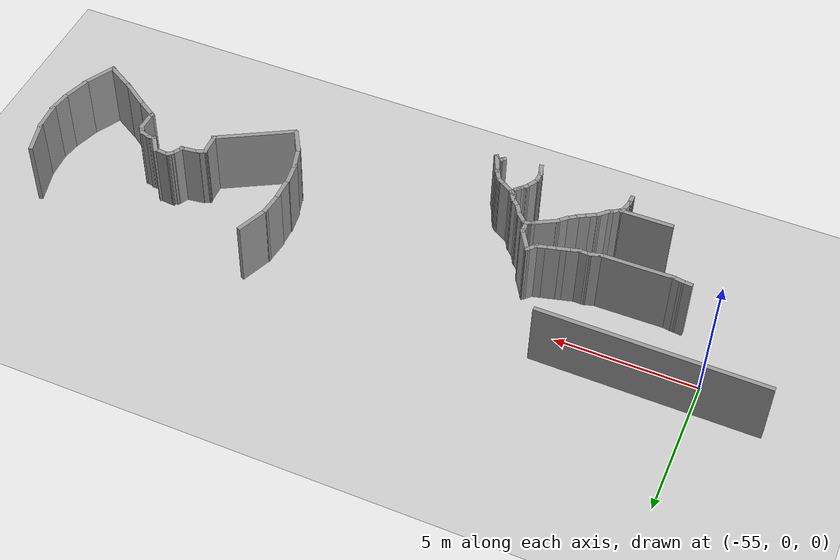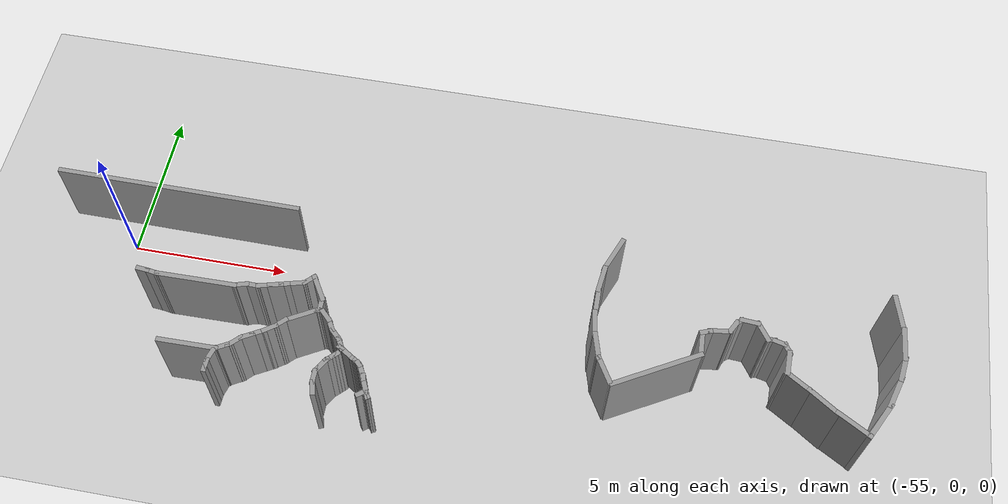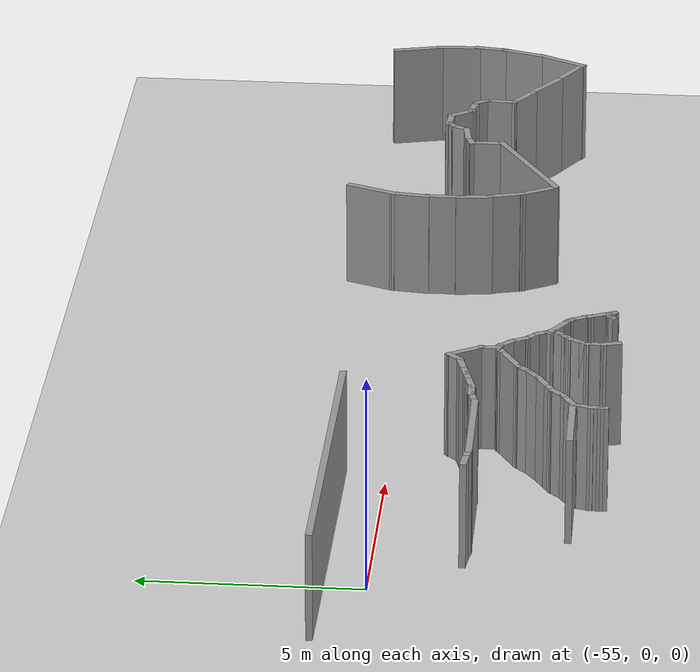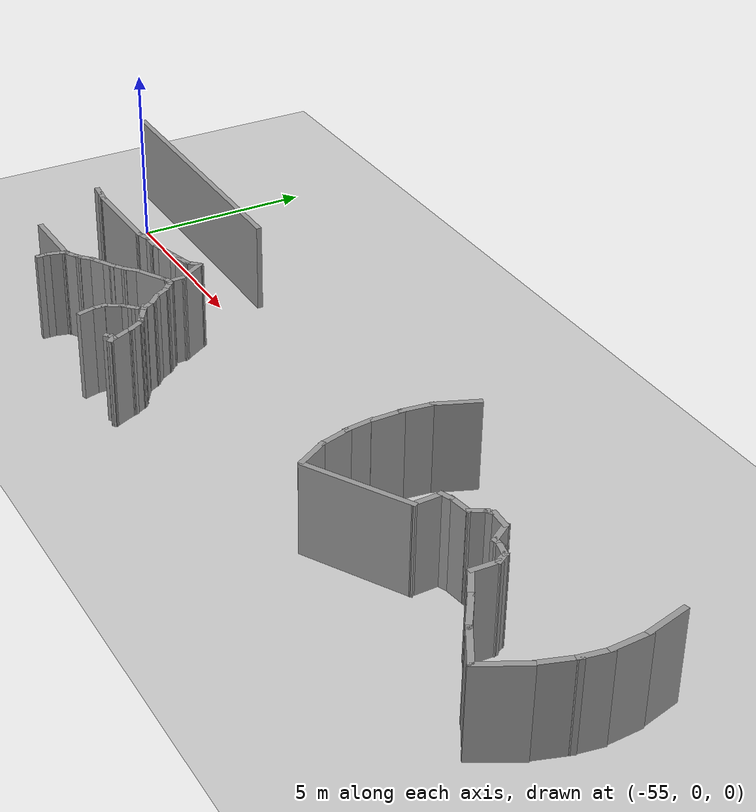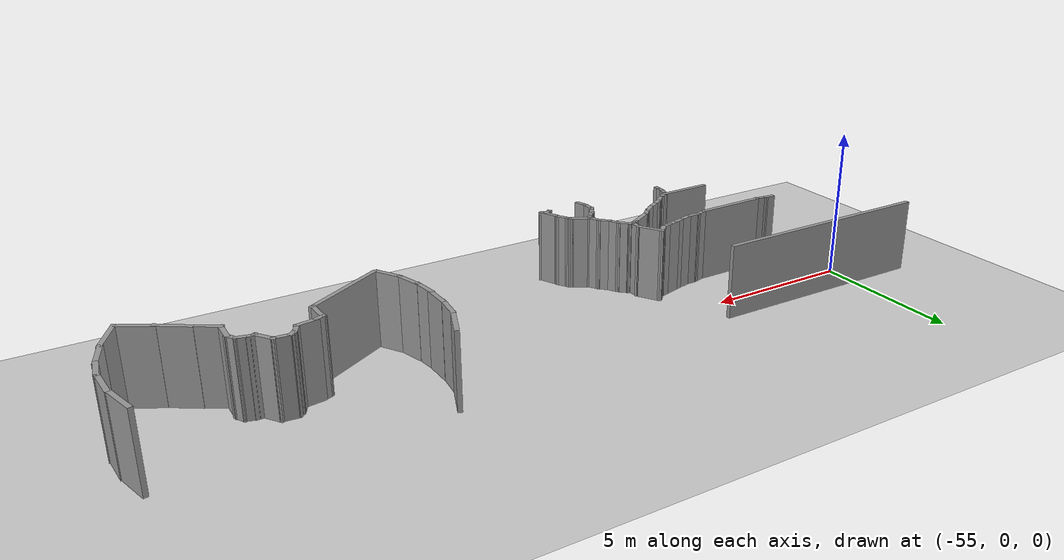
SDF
<sdf version="1.6">
 <world name="default">
  <model name="ground_plane">
   <static>1</static>
   <link name="link">
    <collision name="collision">
     <geometry><plane><normal>0 0 1</normal><size>100 100</size></plane></geometry>
     <surface><friction><ode><mu>100</mu><mu2>50</mu2></ode></friction></surface>
    </collision>
    <visual name="visual">
     <cast_shadows>0</cast_shadows>
     <geometry><plane><normal>0 0 1</normal><size>100 100</size></plane></geometry>
     <material>
      <script><uri>file://media/materials/scripts/gazebo.material</uri><name>Gazebo/Grey</name></script>
     </material>
    </visual>
   </link>
  </model>
  <model name="scene">
   <pose>1.8013 -1.70593 0 0 -0 0</pose>
   <link name="Wall_1114">
    <collision name="Wall_1114_Collision">
     <geometry><box><size>1 0.15 2.5</size></box></geometry>
     <pose>0 0 1.25 0 -0 0</pose>
    </collision>
    <visual name="Wall_1114_Visual">
     <pose>0 0 1.25 0 -0 0</pose>
     <geometry><box><size>1 0.15 2.5</size></box></geometry>
     <material>
      <script><uri>file://media/materials/scripts/gazebo.material</uri><name>Gazebo/Grey</name></script>
      <ambient>1 1 1 1</ambient>
     </material>
    </visual>
    <pose>-41.1953 -1.04522 0 0 -0 2.0944</pose>
   </link>
   <link name="Wall_1115">
    <collision name="Wall_1115_Collision">
     <geometry><box><size>0.925332 0.15 2.5</size></box></geometry>
     <pose>0 0 1.25 0 -0 0</pose>
    </collision>
    <visual name="Wall_1115_Visual">
     <pose>0 0 1.25 0 -0 0</pose>
     <geometry><box><size>0.925332 0.15 2.5</size></box></geometry>
     <material>
      <script><uri>file://media/materials/scripts/gazebo.material</uri><name>Gazebo/Grey</name></script>
      <ambient>1 1 1 1</ambient>
     </material>
    </visual>
    <pose>-41.5106 -0.30337 0 0 -0 1.83915</pose>
   </link>
   <link name="Wall_1116">
    <collision name="Wall_1116_Collision">
     <geometry><box><size>0.873597 0.15 2.5</size></box></geometry>
     <pose>0 0 1.25 0 -0 0</pose>
    </collision>
    <visual name="Wall_1116_Visual">
     <pose>0 0 1.25 0 -0 0</pose>
     <geometry><box><size>0.873597 0.15 2.5</size></box></geometry>
     <material>
      <script><uri>file://media/materials/scripts/gazebo.material</uri><name>Gazebo/Grey</name></script>
      <ambient>1 1 1 1</ambient>
     </material>
    </visual>
    <pose>-41.6722 0.429528 0 0 -0 1.69286</pose>
   </link>
   <link name="Wall_1117">
    <collision name="Wall_1117_Collision">
     <geometry><box><size>0.912636 0.15 2.5</size></box></geometry>
     <pose>0 0 1.25 0 -0 0</pose>
    </collision>
    <visual name="Wall_1117_Visual">
     <pose>0 0 1.25 0 -0 0</pose>
     <geometry><box><size>0.912636 0.15 2.5</size></box></geometry>
     <material>
      <script><uri>file://media/materials/scripts/gazebo.material</uri><name>Gazebo/Grey</name></script>
      <ambient>1 1 1 1</ambient>
     </material>
    </visual>
    <pose>-41.7015 1.16995 0 0 -0 1.5708</pose>
   </link>
   <link name="Wall_1118">
    <collision name="Wall_1118_Collision">
     <geometry><box><size>0.946332 0.15 2.5</size></box></geometry>
     <pose>0 0 1.25 0 -0 0</pose>
    </collision>
    <visual name="Wall_1118_Visual">
     <pose>0 0 1.25 0 -0 0</pose>
     <geometry><box><size>0.946332 0.15 2.5</size></box></geometry>
     <material>
      <script><uri>file://media/materials/scripts/gazebo.material</uri><name>Gazebo/Grey</name></script>
      <ambient>1 1 1 1</ambient>
     </material>
    </visual>
    <pose>-41.6663 1.9463 0 0 -0 1.44517</pose>
   </link>
   <link name="Wall_1119">
    <collision name="Wall_1119_Collision">
     <geometry><box><size>1.2565 0.15 2.5</size></box></geometry>
     <pose>0 0 1.25 0 -0 0</pose>
    </collision>
    <visual name="Wall_1119_Visual">
     <pose>0 0 1.25 0 -0 0</pose>
     <geometry><box><size>1.2565 0.15 2.5</size></box></geometry>
     <material>
      <script><uri>file://media/materials/scripts/gazebo.material</uri><name>Gazebo/Grey</name></script>
      <ambient>1 1 1 1</ambient>
     </material>
    </visual>
    <pose>-41.4111 2.86973 0 0 -0 1.19051</pose>
   </link>
   <link name="Wall_1131">
    <collision name="Wall_1131_Collision">
     <geometry><box><size>1.23853 0.15 2.5</size></box></geometry>
     <pose>0 0 1.25 0 -0 0</pose>
    </collision>
    <visual name="Wall_1131_Visual">
     <pose>0 0 1.25 0 -0 0</pose>
     <geometry><box><size>1.23853 0.15 2.5</size></box></geometry>
     <material>
      <script><uri>file://media/materials/scripts/gazebo.material</uri><name>Gazebo/Grey</name></script>
      <ambient>1 1 1 1</ambient>
     </material>
    </visual>
    <pose>-32.8003 2.40804 0 0 0 -1.32553</pose>
   </link>
   <link name="Wall_1132">
    <collision name="Wall_1132_Collision">
     <geometry><box><size>1.10533 0.15 2.5</size></box></geometry>
     <pose>0 0 1.25 0 -0 0</pose>
    </collision>
    <visual name="Wall_1132_Visual">
     <pose>0 0 1.25 0 -0 0</pose>
     <geometry><box><size>1.10533 0.15 2.5</size></box></geometry>
     <material>
      <script><uri>file://media/materials/scripts/gazebo.material</uri><name>Gazebo/Grey</name></script>
      <ambient>1 1 1 1</ambient>
     </material>
    </visual>
    <pose>-32.6309 1.40333 0 0 0 -1.52357</pose>
   </link>
   <link name="Wall_1133">
    <collision name="Wall_1133_Collision">
     <geometry><box><size>0.849738 0.15 2.5</size></box></geometry>
     <pose>0 0 1.25 0 -0 0</pose>
    </collision>
    <visual name="Wall_1133_Visual">
     <pose>0 0 1.25 0 -0 0</pose>
     <geometry><box><size>0.849738 0.15 2.5</size></box></geometry>
     <material>
      <script><uri>file://media/materials/scripts/gazebo.material</uri><name>Gazebo/Grey</name></script>
      <ambient>1 1 1 1</ambient>
     </material>
    </visual>
    <pose>-32.6514 0.581529 0 0 0 -1.73651</pose>
   </link>
   <link name="Wall_1134">
    <collision name="Wall_1134_Collision">
     <geometry><box><size>1.11889 0.15 2.5</size></box></geometry>
     <pose>0 0 1.25 0 -0 0</pose>
    </collision>
    <visual name="Wall_1134_Visual">
     <pose>0 0 1.25 0 -0 0</pose>
     <geometry><box><size>1.11889 0.15 2.5</size></box></geometry>
     <material>
      <script><uri>file://media/materials/scripts/gazebo.material</uri><name>Gazebo/Grey</name></script>
      <ambient>1 1 1 1</ambient>
     </material>
    </visual>
    <pose>-32.8431 -0.195251 0 0 0 -1.88271</pose>
   </link>
   <link name="Wall_1135">
    <collision name="Wall_1135_Collision">
     <geometry><box><size>1.34589 0.15 2.5</size></box></geometry>
     <pose>0 0 1.25 0 -0 0</pose>
    </collision>
    <visual name="Wall_1135_Visual">
     <pose>0 0 1.25 0 -0 0</pose>
     <geometry><box><size>1.34589 0.15 2.5</size></box></geometry>
     <material>
      <script><uri>file://media/materials/scripts/gazebo.material</uri><name>Gazebo/Grey</name></script>
      <ambient>1 1 1 1</ambient>
     </material>
    </visual>
    <pose>-33.2556 -1.18545 0 0 0 -2.05528</pose>
   </link>
   <link name="Wall_1136">
    <collision name="Wall_1136_Collision">
     <geometry><box><size>1.22147 0.15 2.5</size></box></geometry>
     <pose>0 0 1.25 0 -0 0</pose>
    </collision>
    <visual name="Wall_1136_Visual">
     <pose>0 0 1.25 0 -0 0</pose>
     <geometry><box><size>1.22147 0.15 2.5</size></box></geometry>
     <material>
      <script><uri>file://media/materials/scripts/gazebo.material</uri><name>Gazebo/Grey</name></script>
      <ambient>1 1 1 1</ambient>
     </material>
    </visual>
    <pose>-33.9961 -1.42875 0 0 -0 2.6109</pose>
   </link>
   <link name="Wall_1137">
    <collision name="Wall_1137_Collision">
     <geometry><box><size>1.17135 0.15 2.5</size></box></geometry>
     <pose>0 0 1.25 0 -0 0</pose>
    </collision>
    <visual name="Wall_1137_Visual">
     <pose>0 0 1.25 0 -0 0</pose>
     <geometry><box><size>1.17135 0.15 2.5</size></box></geometry>
     <material>
      <script><uri>file://media/materials/scripts/gazebo.material</uri><name>Gazebo/Grey</name></script>
      <ambient>1 1 1 1</ambient>
     </material>
    </visual>
    <pose>-34.8767 -0.879623 0 0 -0 2.53133</pose>
   </link>
   <link name="Wall_1138">
    <collision name="Wall_1138_Collision">
     <geometry><box><size>0.934721 0.15 2.5</size></box></geometry>
     <pose>0 0 1.25 0 -0 0</pose>
    </collision>
    <visual name="Wall_1138_Visual">
     <pose>0 0 1.25 0 -0 0</pose>
     <geometry><box><size>0.934721 0.15 2.5</size></box></geometry>
     <material>
      <script><uri>file://media/materials/scripts/gazebo.material</uri><name>Gazebo/Grey</name></script>
      <ambient>1 1 1 1</ambient>
     </material>
    </visual>
    <pose>-35.6398 -0.374549 0 0 -0 2.56952</pose>
   </link>
   <link name="Wall_1139">
    <collision name="Wall_1139_Collision">
     <geometry><box><size>0.817523 0.15 2.5</size></box></geometry>
     <pose>0 0 1.25 0 -0 0</pose>
    </collision>
    <visual name="Wall_1139_Visual">
     <pose>0 0 1.25 0 -0 0</pose>
     <geometry><box><size>0.817523 0.15 2.5</size></box></geometry>
     <material>
      <script><uri>file://media/materials/scripts/gazebo.material</uri><name>Gazebo/Grey</name></script>
      <ambient>1 1 1 1</ambient>
     </material>
    </visual>
    <pose>-35.9431 0.171418 0 0 -0 1.53529</pose>
   </link>
   <link name="Wall_1140">
    <collision name="Wall_1140_Collision">
     <geometry><box><size>0.440183 0.15 2.5</size></box></geometry>
     <pose>0 0 1.25 0 -0 0</pose>
    </collision>
    <visual name="Wall_1140_Visual">
     <pose>0 0 1.25 0 -0 0</pose>
     <geometry><box><size>0.440183 0.15 2.5</size></box></geometry>
     <material>
      <script><uri>file://media/materials/scripts/gazebo.material</uri><name>Gazebo/Grey</name></script>
      <ambient>1 1 1 1</ambient>
     </material>
    </visual>
    <pose>-36.0039 0.615887 0 0 -0 2.09509</pose>
   </link>
   <link name="Wall_1141">
    <collision name="Wall_1141_Collision">
     <geometry><box><size>0.451446 0.15 2.5</size></box></geometry>
     <pose>0 0 1.25 0 -0 0</pose>
    </collision>
    <visual name="Wall_1141_Visual">
     <pose>0 0 1.25 0 -0 0</pose>
     <geometry><box><size>0.451446 0.15 2.5</size></box></geometry>
     <material>
      <script><uri>file://media/materials/scripts/gazebo.material</uri><name>Gazebo/Grey</name></script>
      <ambient>1 1 1 1</ambient>
     </material>
    </visual>
    <pose>-36.2376 0.777242 0 0 -0 2.90211</pose>
   </link>
   <link name="Wall_1142">
    <collision name="Wall_1142_Collision">
     <geometry><box><size>0.346667 0.15 2.5</size></box></geometry>
     <pose>0 0 1.25 0 -0 0</pose>
    </collision>
    <visual name="Wall_1142_Visual">
     <pose>0 0 1.25 0 -0 0</pose>
     <geometry><box><size>0.346667 0.15 2.5</size></box></geometry>
     <material>
      <script><uri>file://media/materials/scripts/gazebo.material</uri><name>Gazebo/Grey</name></script>
      <ambient>1 1 1 1</ambient>
     </material>
    </visual>
    <pose>-36.4824 0.825047 0 0 0 -3.11483</pose>
   </link>
   <link name="Wall_1143">
    <collision name="Wall_1143_Collision">
     <geometry><box><size>0.742494 0.15 2.5</size></box></geometry>
     <pose>0 0 1.25 0 -0 0</pose>
    </collision>
    <visual name="Wall_1143_Visual">
     <pose>0 0 1.25 0 -0 0</pose>
     <geometry><box><size>0.742494 0.15 2.5</size></box></geometry>
     <material>
      <script><uri>file://media/materials/scripts/gazebo.material</uri><name>Gazebo/Grey</name></script>
      <ambient>1 1 1 1</ambient>
     </material>
    </visual>
    <pose>-36.745 1.0542 0 0 -0 2.15893</pose>
   </link>
   <link name="Wall_1144">
    <collision name="Wall_1144_Collision">
     <geometry><box><size>0.628094 0.15 2.5</size></box></geometry>
     <pose>0 0 1.25 0 -0 0</pose>
    </collision>
    <visual name="Wall_1144_Visual">
     <pose>0 0 1.25 0 -0 0</pose>
     <geometry><box><size>0.628094 0.15 2.5</size></box></geometry>
     <material>
      <script><uri>file://media/materials/scripts/gazebo.material</uri><name>Gazebo/Grey</name></script>
      <ambient>1 1 1 1</ambient>
     </material>
    </visual>
    <pose>-37.1478 1.30379 0 0 -0 3.06706</pose>
   </link>
   <link name="Wall_1145">
    <collision name="Wall_1145_Collision">
     <geometry><box><size>0.298613 0.15 2.5</size></box></geometry>
     <pose>0 0 1.25 0 -0 0</pose>
    </collision>
    <visual name="Wall_1145_Visual">
     <pose>0 0 1.25 0 -0 0</pose>
     <geometry><box><size>0.298613 0.15 2.5</size></box></geometry>
     <material>
      <script><uri>file://media/materials/scripts/gazebo.material</uri><name>Gazebo/Grey</name></script>
      <ambient>1 1 1 1</ambient>
     </material>
    </visual>
    <pose>-37.4451 1.26161 0 0 0 -2.4861</pose>
   </link>
   <link name="Wall_1146">
    <collision name="Wall_1146_Collision">
     <geometry><box><size>0.52625 0.15 2.5</size></box></geometry>
     <pose>0 0 1.25 0 -0 0</pose>
    </collision>
    <visual name="Wall_1146_Visual">
     <pose>0 0 1.25 0 -0 0</pose>
     <geometry><box><size>0.52625 0.15 2.5</size></box></geometry>
     <material>
      <script><uri>file://media/materials/scripts/gazebo.material</uri><name>Gazebo/Grey</name></script>
      <ambient>1 1 1 1</ambient>
     </material>
    </visual>
    <pose>-37.6096 1.05164 0 0 0 -2.07534</pose>
   </link>
   <link name="Wall_1148">
    <collision name="Wall_1148_Collision">
     <geometry><box><size>0.734238 0.15 2.5</size></box></geometry>
     <pose>0 0 1.25 0 -0 0</pose>
    </collision>
    <visual name="Wall_1148_Visual">
     <pose>0 0 1.25 0 -0 0</pose>
     <geometry><box><size>0.734238 0.15 2.5</size></box></geometry>
     <material>
      <script><uri>file://media/materials/scripts/gazebo.material</uri><name>Gazebo/Grey</name></script>
      <ambient>1 1 1 1</ambient>
     </material>
    </visual>
    <pose>-37.9899 0.832469 0 0 0 -3.00493</pose>
   </link>
   <link name="Wall_1149">
    <collision name="Wall_1149_Collision">
     <geometry><box><size>0.402022 0.15 2.5</size></box></geometry>
     <pose>0 0 1.25 0 -0 0</pose>
    </collision>
    <visual name="Wall_1149_Visual">
     <pose>0 0 1.25 0 -0 0</pose>
     <geometry><box><size>0.402022 0.15 2.5</size></box></geometry>
     <material>
      <script><uri>file://media/materials/scripts/gazebo.material</uri><name>Gazebo/Grey</name></script>
      <ambient>1 1 1 1</ambient>
     </material>
    </visual>
    <pose>-38.3974 0.734067 0 0 0 -2.78558</pose>
   </link>
   <link name="Wall_1150">
    <collision name="Wall_1150_Collision">
     <geometry><box><size>0.875498 0.15 2.5</size></box></geometry>
     <pose>0 0 1.25 0 -0 0</pose>
    </collision>
    <visual name="Wall_1150_Visual">
     <pose>0 0 1.25 0 -0 0</pose>
     <geometry><box><size>0.875498 0.15 2.5</size></box></geometry>
     <material>
      <script><uri>file://media/materials/scripts/gazebo.material</uri><name>Gazebo/Grey</name></script>
      <ambient>1 1 1 1</ambient>
     </material>
    </visual>
    <pose>-38.4909 0.327535 0 0 0 -1.5433</pose>
   </link>
   <link name="Wall_1151">
    <collision name="Wall_1151_Collision">
     <geometry><box><size>2.97955 0.15 2.5</size></box></geometry>
     <pose>0 0 1.25 0 -0 0</pose>
    </collision>
    <visual name="Wall_1151_Visual">
     <pose>0 0 1.25 0 -0 0</pose>
     <geometry><box><size>2.97955 0.15 2.5</size></box></geometry>
     <material>
      <script><uri>file://media/materials/scripts/gazebo.material</uri><name>Gazebo/Grey</name></script>
      <ambient>1 1 1 1</ambient>
     </material>
    </visual>
    <pose>-39.6938 -0.738408 0 0 0 -2.6213</pose>
   </link>
   <link name="Wall_229">
    <collision name="Wall_229_Collision">
     <geometry><box><size>0.5 0.15 2.5</size></box></geometry>
     <pose>0 0 1.25 0 -0 0</pose>
    </collision>
    <visual name="Wall_229_Visual">
     <pose>0 0 1.25 0 -0 0</pose>
     <geometry><box><size>0.5 0.15 2.5</size></box></geometry>
     <material>
      <script><uri>file://media/materials/scripts/gazebo.material</uri><name>Gazebo/Grey</name></script>
      <ambient>1 1 1 1</ambient>
     </material>
    </visual>
    <pose>-49.3862 -3.13393 0 0 -0 1.8326</pose>
   </link>
   <link name="Wall_235">
    <collision name="Wall_235_Collision">
     <geometry><box><size>0.5 0.15 2.5</size></box></geometry>
     <pose>0 0 1.25 0 -0 0</pose>
    </collision>
    <visual name="Wall_235_Visual">
     <pose>0 0 1.25 0 -0 0</pose>
     <geometry><box><size>0.5 0.15 2.5</size></box></geometry>
     <material>
      <script><uri>file://media/materials/scripts/gazebo.material</uri><name>Gazebo/Grey</name></script>
      <ambient>1 1 1 1</ambient>
     </material>
    </visual>
    <pose>-49.4315 -2.78989 0 0 -0 1.5708</pose>
   </link>
   <link name="Wall_236">
    <collision name="Wall_236_Collision">
     <geometry><box><size>0.25 0.15 2.5</size></box></geometry>
     <pose>0 0 1.25 0 -0 0</pose>
    </collision>
    <visual name="Wall_236_Visual">
     <pose>0 0 1.25 0 -0 0</pose>
     <geometry><box><size>0.25 0.15 2.5</size></box></geometry>
     <material>
      <script><uri>file://media/materials/scripts/gazebo.material</uri><name>Gazebo/Grey</name></script>
      <ambient>1 1 1 1</ambient>
     </material>
    </visual>
    <pose>-49.4065 -2.57159 0 0 -0 1.0472</pose>
   </link>
   <link name="Wall_237">
    <collision name="Wall_237_Collision">
     <geometry><box><size>0.5 0.15 2.5</size></box></geometry>
     <pose>0 0 1.25 0 -0 0</pose>
    </collision>
    <visual name="Wall_237_Visual">
     <pose>0 0 1.25 0 -0 0</pose>
     <geometry><box><size>0.5 0.15 2.5</size></box></geometry>
     <material>
      <script><uri>file://media/materials/scripts/gazebo.material</uri><name>Gazebo/Grey</name></script>
      <ambient>1 1 1 1</ambient>
     </material>
    </visual>
    <pose>-49.294 -2.37673 0 0 -0 1.0472</pose>
   </link>
   <link name="Wall_238">
    <collision name="Wall_238_Collision">
     <geometry><box><size>0.25 0.15 2.5</size></box></geometry>
     <pose>0 0 1.25 0 -0 0</pose>
    </collision>
    <visual name="Wall_238_Visual">
     <pose>0 0 1.25 0 -0 0</pose>
     <geometry><box><size>0.25 0.15 2.5</size></box></geometry>
     <material>
      <script><uri>file://media/materials/scripts/gazebo.material</uri><name>Gazebo/Grey</name></script>
      <ambient>1 1 1 1</ambient>
     </material>
    </visual>
    <pose>-49.1711 -2.18982 0 0 -0 0.785398</pose>
   </link>
   <link name="Wall_239">
    <collision name="Wall_239_Collision">
     <geometry><box><size>0.25 0.15 2.5</size></box></geometry>
     <pose>0 0 1.25 0 -0 0</pose>
    </collision>
    <visual name="Wall_239_Visual">
     <pose>0 0 1.25 0 -0 0</pose>
     <geometry><box><size>0.25 0.15 2.5</size></box></geometry>
     <material>
      <script><uri>file://media/materials/scripts/gazebo.material</uri><name>Gazebo/Grey</name></script>
      <ambient>1 1 1 1</ambient>
     </material>
    </visual>
    <pose>-49.1004 -2.11911 0 0 -0 0.785398</pose>
   </link>
   <link name="Wall_240">
    <collision name="Wall_240_Collision">
     <geometry><box><size>0.25 0.15 2.5</size></box></geometry>
     <pose>0 0 1.25 0 -0 0</pose>
    </collision>
    <visual name="Wall_240_Visual">
     <pose>0 0 1.25 0 -0 0</pose>
     <geometry><box><size>0.25 0.15 2.5</size></box></geometry>
     <material>
      <script><uri>file://media/materials/scripts/gazebo.material</uri><name>Gazebo/Grey</name></script>
      <ambient>1 1 1 1</ambient>
     </material>
    </visual>
    <pose>-49.0297 -2.0484 0 0 -0 0.785398</pose>
   </link>
   <link name="Wall_241">
    <collision name="Wall_241_Collision">
     <geometry><box><size>0.25 0.15 2.5</size></box></geometry>
     <pose>0 0 1.25 0 -0 0</pose>
    </collision>
    <visual name="Wall_241_Visual">
     <pose>0 0 1.25 0 -0 0</pose>
     <geometry><box><size>0.25 0.15 2.5</size></box></geometry>
     <material>
      <script><uri>file://media/materials/scripts/gazebo.material</uri><name>Gazebo/Grey</name></script>
      <ambient>1 1 1 1</ambient>
     </material>
    </visual>
    <pose>-48.959 -1.97769 0 0 -0 0.785398</pose>
   </link>
   <link name="Wall_342">
    <collision name="Wall_342_Collision">
     <geometry><box><size>0.270081 0.15 2.5</size></box></geometry>
     <pose>0 0 1.25 0 -0 0</pose>
    </collision>
    <visual name="Wall_342_Visual">
     <pose>0 0 1.25 0 -0 0</pose>
     <geometry><box><size>0.270081 0.15 2.5</size></box></geometry>
     <material>
      <script><uri>file://media/materials/scripts/gazebo.material</uri><name>Gazebo/Grey</name></script>
      <ambient>1 1 1 1</ambient>
     </material>
    </visual>
    <pose>-48.0037 -3.08713 0 0 -0 0.675676</pose>
   </link>
   <link name="Wall_343">
    <collision name="Wall_343_Collision">
     <geometry><box><size>0.251498 0.15 2.5</size></box></geometry>
     <pose>0 0 1.25 0 -0 0</pose>
    </collision>
    <visual name="Wall_343_Visual">
     <pose>0 0 1.25 0 -0 0</pose>
     <geometry><box><size>0.251498 0.15 2.5</size></box></geometry>
     <material>
      <script><uri>file://media/materials/scripts/gazebo.material</uri><name>Gazebo/Grey</name></script>
      <ambient>1 1 1 1</ambient>
     </material>
    </visual>
    <pose>-47.9069 -3.038 0 0 -0 0.172</pose>
   </link>
   <link name="Wall_344">
    <collision name="Wall_344_Collision">
     <geometry><box><size>0.289635 0.15 2.5</size></box></geometry>
     <pose>0 0 1.25 0 -0 0</pose>
    </collision>
    <visual name="Wall_344_Visual">
     <pose>0 0 1.25 0 -0 0</pose>
     <geometry><box><size>0.289635 0.15 2.5</size></box></geometry>
     <material>
      <script><uri>file://media/materials/scripts/gazebo.material</uri><name>Gazebo/Grey</name></script>
      <ambient>1 1 1 1</ambient>
     </material>
    </visual>
    <pose>-47.8128 -3.08639 0 0 0 -0.88821</pose>
   </link>
   <link name="Wall_367">
    <collision name="Wall_367_Collision">
     <geometry><box><size>0.740405 0.15 2.5</size></box></geometry>
     <pose>0 0 1.25 0 -0 0</pose>
    </collision>
    <visual name="Wall_367_Visual">
     <pose>0 0 1.25 0 -0 0</pose>
     <geometry><box><size>0.740405 0.15 2.5</size></box></geometry>
     <material>
      <script><uri>file://media/materials/scripts/gazebo.material</uri><name>Gazebo/Grey</name></script>
      <ambient>1 1 1 1</ambient>
     </material>
    </visual>
    <pose>-47.8887 -2.87368 0 0 -0 1.98887</pose>
   </link>
   <link name="Wall_370">
    <collision name="Wall_370_Collision">
     <geometry><box><size>0.50191 0.15 2.5</size></box></geometry>
     <pose>0 0 1.25 0 -0 0</pose>
    </collision>
    <visual name="Wall_370_Visual">
     <pose>0 0 1.25 0 -0 0</pose>
     <geometry><box><size>0.50191 0.15 2.5</size></box></geometry>
     <material>
      <script><uri>file://media/materials/scripts/gazebo.material</uri><name>Gazebo/Grey</name></script>
      <ambient>1 1 1 1</ambient>
     </material>
    </visual>
    <pose>-48.1244 -2.35324 0 0 -0 2.07485</pose>
   </link>
   <link name="Wall_371">
    <collision name="Wall_371_Collision">
     <geometry><box><size>0.25 0.15 2.5</size></box></geometry>
     <pose>0 0 1.25 0 -0 0</pose>
    </collision>
    <visual name="Wall_371_Visual">
     <pose>0 0 1.25 0 -0 0</pose>
     <geometry><box><size>0.25 0.15 2.5</size></box></geometry>
     <material>
      <script><uri>file://media/materials/scripts/gazebo.material</uri><name>Gazebo/Grey</name></script>
      <ambient>1 1 1 1</ambient>
     </material>
    </visual>
    <pose>-48.2447 -2.16381 0 0 -0 2.35619</pose>
   </link>
   <link name="Wall_372">
    <collision name="Wall_372_Collision">
     <geometry><box><size>0.25 0.15 2.5</size></box></geometry>
     <pose>0 0 1.25 0 -0 0</pose>
    </collision>
    <visual name="Wall_372_Visual">
     <pose>0 0 1.25 0 -0 0</pose>
     <geometry><box><size>0.25 0.15 2.5</size></box></geometry>
     <material>
      <script><uri>file://media/materials/scripts/gazebo.material</uri><name>Gazebo/Grey</name></script>
      <ambient>1 1 1 1</ambient>
     </material>
    </visual>
    <pose>-48.3234 -2.10345 0 0 -0 2.61799</pose>
   </link>
   <link name="Wall_373">
    <collision name="Wall_373_Collision">
     <geometry><box><size>0.25 0.15 2.5</size></box></geometry>
     <pose>0 0 1.25 0 -0 0</pose>
    </collision>
    <visual name="Wall_373_Visual">
     <pose>0 0 1.25 0 -0 0</pose>
     <geometry><box><size>0.25 0.15 2.5</size></box></geometry>
     <material>
      <script><uri>file://media/materials/scripts/gazebo.material</uri><name>Gazebo/Grey</name></script>
      <ambient>1 1 1 1</ambient>
     </material>
    </visual>
    <pose>-48.41 -2.05345 0 0 -0 2.61799</pose>
   </link>
   <link name="Wall_375">
    <collision name="Wall_375_Collision">
     <geometry><box><size>0.705086 0.15 2.5</size></box></geometry>
     <pose>0 0 1.25 0 -0 0</pose>
    </collision>
    <visual name="Wall_375_Visual">
     <pose>0 0 1.25 0 -0 0</pose>
     <geometry><box><size>0.705086 0.15 2.5</size></box></geometry>
     <material>
      <script><uri>file://media/materials/scripts/gazebo.material</uri><name>Gazebo/Grey</name></script>
      <ambient>1 1 1 1</ambient>
     </material>
    </visual>
    <pose>-48.6023 -1.93093 0 0 -0 2.58205</pose>
   </link>
   <link name="Wall_376">
    <collision name="Wall_376_Collision">
     <geometry><box><size>0.25 0.15 2.5</size></box></geometry>
     <pose>0 0 1.25 0 -0 0</pose>
    </collision>
    <visual name="Wall_376_Visual">
     <pose>0 0 1.25 0 -0 0</pose>
     <geometry><box><size>0.25 0.15 2.5</size></box></geometry>
     <material>
      <script><uri>file://media/materials/scripts/gazebo.material</uri><name>Gazebo/Grey</name></script>
      <ambient>1 1 1 1</ambient>
     </material>
    </visual>
    <pose>-48.8786 -1.7584 0 0 -0 2.61799</pose>
   </link>
   <link name="Wall_379">
    <collision name="Wall_379_Collision">
     <geometry><box><size>0.25 0.15 2.5</size></box></geometry>
     <pose>0 0 1.25 0 -0 0</pose>
    </collision>
    <visual name="Wall_379_Visual">
     <pose>0 0 1.25 0 -0 0</pose>
     <geometry><box><size>0.25 0.15 2.5</size></box></geometry>
     <material>
      <script><uri>file://media/materials/scripts/gazebo.material</uri><name>Gazebo/Grey</name></script>
      <ambient>1 1 1 1</ambient>
     </material>
    </visual>
    <pose>-48.0215 -2.5556 0 0 -0 1.8326</pose>
   </link>
   <link name="Wall_381">
    <collision name="Wall_381_Collision">
     <geometry><box><size>0.5 0.15 2.5</size></box></geometry>
     <pose>0 0 1.25 0 -0 0</pose>
    </collision>
    <visual name="Wall_381_Visual">
     <pose>0 0 1.25 0 -0 0</pose>
     <geometry><box><size>0.5 0.15 2.5</size></box></geometry>
     <material>
      <script><uri>file://media/materials/scripts/gazebo.material</uri><name>Gazebo/Grey</name></script>
      <ambient>1 1 1 1</ambient>
     </material>
    </visual>
    <pose>-48.9228 -1.63185 0 0 -0 2.0944</pose>
   </link>
   <link name="Wall_382">
    <collision name="Wall_382_Collision">
     <geometry><box><size>0.5 0.15 2.5</size></box></geometry>
     <pose>0 0 1.25 0 -0 0</pose>
    </collision>
    <visual name="Wall_382_Visual">
     <pose>0 0 1.25 0 -0 0</pose>
     <geometry><box><size>0.5 0.15 2.5</size></box></geometry>
     <material>
      <script><uri>file://media/materials/scripts/gazebo.material</uri><name>Gazebo/Grey</name></script>
      <ambient>1 1 1 1</ambient>
     </material>
    </visual>
    <pose>-49.134 -1.35655 0 0 -0 2.35619</pose>
   </link>
   <link name="Wall_383">
    <collision name="Wall_383_Collision">
     <geometry><box><size>0.5 0.15 2.5</size></box></geometry>
     <pose>0 0 1.25 0 -0 0</pose>
    </collision>
    <visual name="Wall_383_Visual">
     <pose>0 0 1.25 0 -0 0</pose>
     <geometry><box><size>0.5 0.15 2.5</size></box></geometry>
     <material>
      <script><uri>file://media/materials/scripts/gazebo.material</uri><name>Gazebo/Grey</name></script>
      <ambient>1 1 1 1</ambient>
     </material>
    </visual>
    <pose>-49.3453 -1.08125 0 0 -0 2.0944</pose>
   </link>
   <link name="Wall_384">
    <collision name="Wall_384_Collision">
     <geometry><box><size>0.5 0.15 2.5</size></box></geometry>
     <pose>0 0 1.25 0 -0 0</pose>
    </collision>
    <visual name="Wall_384_Visual">
     <pose>0 0 1.25 0 -0 0</pose>
     <geometry><box><size>0.5 0.15 2.5</size></box></geometry>
     <material>
      <script><uri>file://media/materials/scripts/gazebo.material</uri><name>Gazebo/Grey</name></script>
      <ambient>1 1 1 1</ambient>
     </material>
    </visual>
    <pose>-49.5565 -0.805953 0 0 -0 2.35619</pose>
   </link>
   <link name="Wall_385">
    <collision name="Wall_385_Collision">
     <geometry><box><size>0.254321 0.15 2.5</size></box></geometry>
     <pose>0 0 1.25 0 -0 0</pose>
    </collision>
    <visual name="Wall_385_Visual">
     <pose>0 0 1.25 0 -0 0</pose>
     <geometry><box><size>0.254321 0.15 2.5</size></box></geometry>
     <material>
      <script><uri>file://media/materials/scripts/gazebo.material</uri><name>Gazebo/Grey</name></script>
      <ambient>1 1 1 1</ambient>
     </material>
    </visual>
    <pose>-49.7315 -0.672118 0 0 -0 2.94692</pose>
   </link>
   <link name="Wall_386">
    <collision name="Wall_386_Collision">
     <geometry><box><size>0.24305 0.15 2.5</size></box></geometry>
     <pose>0 0 1.25 0 -0 0</pose>
    </collision>
    <visual name="Wall_386_Visual">
     <pose>0 0 1.25 0 -0 0</pose>
     <geometry><box><size>0.24305 0.15 2.5</size></box></geometry>
     <material>
      <script><uri>file://media/materials/scripts/gazebo.material</uri><name>Gazebo/Grey</name></script>
      <ambient>1 1 1 1</ambient>
     </material>
    </visual>
    <pose>-49.828 -0.672118 0 0 0 -2.92297</pose>
   </link>
   <link name="Wall_387">
    <collision name="Wall_387_Collision">
     <geometry><box><size>0.25 0.15 2.5</size></box></geometry>
     <pose>0 0 1.25 0 -0 0</pose>
    </collision>
    <visual name="Wall_387_Visual">
     <pose>0 0 1.25 0 -0 0</pose>
     <geometry><box><size>0.25 0.15 2.5</size></box></geometry>
     <material>
      <script><uri>file://media/materials/scripts/gazebo.material</uri><name>Gazebo/Grey</name></script>
      <ambient>1 1 1 1</ambient>
     </material>
    </visual>
    <pose>-49.9168 -0.707209 0 0 0 -2.61799</pose>
   </link>
   <link name="Wall_388">
    <collision name="Wall_388_Collision">
     <geometry><box><size>1 0.15 2.5</size></box></geometry>
     <pose>0 0 1.25 0 -0 0</pose>
    </collision>
    <visual name="Wall_388_Visual">
     <pose>0 0 1.25 0 -0 0</pose>
     <geometry><box><size>1 0.15 2.5</size></box></geometry>
     <material>
      <script><uri>file://media/materials/scripts/gazebo.material</uri><name>Gazebo/Grey</name></script>
      <ambient>1 1 1 1</ambient>
     </material>
    </visual>
    <pose>-50.3281 -0.944709 0 0 0 -2.61799</pose>
   </link>
   <link name="Wall_389">
    <collision name="Wall_389_Collision">
     <geometry><box><size>0.5 0.15 2.5</size></box></geometry>
     <pose>0 0 1.25 0 -0 0</pose>
    </collision>
    <visual name="Wall_389_Visual">
     <pose>0 0 1.25 0 -0 0</pose>
     <geometry><box><size>0.5 0.15 2.5</size></box></geometry>
     <material>
      <script><uri>file://media/materials/scripts/gazebo.material</uri><name>Gazebo/Grey</name></script>
      <ambient>1 1 1 1</ambient>
     </material>
    </visual>
    <pose>-50.8199 -1.28095 0 0 0 -2.35619</pose>
   </link>
   <link name="Wall_390">
    <collision name="Wall_390_Collision">
     <geometry><box><size>0.519236 0.15 2.5</size></box></geometry>
     <pose>0 0 1.25 0 -0 0</pose>
    </collision>
    <visual name="Wall_390_Visual">
     <pose>0 0 1.25 0 -0 0</pose>
     <geometry><box><size>0.519236 0.15 2.5</size></box></geometry>
     <material>
      <script><uri>file://media/materials/scripts/gazebo.material</uri><name>Gazebo/Grey</name></script>
      <ambient>1 1 1 1</ambient>
     </material>
    </visual>
    <pose>-51.0941 -1.51179 0 0 0 -2.52275</pose>
   </link>
   <link name="Wall_391">
    <collision name="Wall_391_Collision">
     <geometry><box><size>0.5 0.15 2.5</size></box></geometry>
     <pose>0 0 1.25 0 -0 0</pose>
    </collision>
    <visual name="Wall_391_Visual">
     <pose>0 0 1.25 0 -0 0</pose>
     <geometry><box><size>0.5 0.15 2.5</size></box></geometry>
     <material>
      <script><uri>file://media/materials/scripts/gazebo.material</uri><name>Gazebo/Grey</name></script>
      <ambient>1 1 1 1</ambient>
     </material>
    </visual>
    <pose>-51.3893 -1.70639 0 0 0 -2.61799</pose>
   </link>
   <link name="Wall_393">
    <collision name="Wall_393_Collision">
     <geometry><box><size>0.5 0.15 2.5</size></box></geometry>
     <pose>0 0 1.25 0 -0 0</pose>
    </collision>
    <visual name="Wall_393_Visual">
     <pose>0 0 1.25 0 -0 0</pose>
     <geometry><box><size>0.5 0.15 2.5</size></box></geometry>
     <material>
      <script><uri>file://media/materials/scripts/gazebo.material</uri><name>Gazebo/Grey</name></script>
      <ambient>1 1 1 1</ambient>
     </material>
    </visual>
    <pose>-51.6924 -1.88139 0 0 0 -2.61799</pose>
   </link>
   <link name="Wall_394">
    <collision name="Wall_394_Collision">
     <geometry><box><size>0.5 0.15 2.5</size></box></geometry>
     <pose>0 0 1.25 0 -0 0</pose>
    </collision>
    <visual name="Wall_394_Visual">
     <pose>0 0 1.25 0 -0 0</pose>
     <geometry><box><size>0.5 0.15 2.5</size></box></geometry>
     <material>
      <script><uri>file://media/materials/scripts/gazebo.material</uri><name>Gazebo/Grey</name></script>
      <ambient>1 1 1 1</ambient>
     </material>
    </visual>
    <pose>-51.9677 -2.09263 0 0 0 -2.35619</pose>
   </link>
   <link name="Wall_395">
    <collision name="Wall_395_Collision">
     <geometry><box><size>0.25 0.15 2.5</size></box></geometry>
     <pose>0 0 1.25 0 -0 0</pose>
    </collision>
    <visual name="Wall_395_Visual">
     <pose>0 0 1.25 0 -0 0</pose>
     <geometry><box><size>0.25 0.15 2.5</size></box></geometry>
     <material>
      <script><uri>file://media/materials/scripts/gazebo.material</uri><name>Gazebo/Grey</name></script>
      <ambient>1 1 1 1</ambient>
     </material>
    </visual>
    <pose>-52.1348 -2.24138 0 0 0 -2.61799</pose>
   </link>
   <link name="Wall_396">
    <collision name="Wall_396_Collision">
     <geometry><box><size>0.5 0.15 2.5</size></box></geometry>
     <pose>0 0 1.25 0 -0 0</pose>
    </collision>
    <visual name="Wall_396_Visual">
     <pose>0 0 1.25 0 -0 0</pose>
     <geometry><box><size>0.5 0.15 2.5</size></box></geometry>
     <material>
      <script><uri>file://media/materials/scripts/gazebo.material</uri><name>Gazebo/Grey</name></script>
      <ambient>1 1 1 1</ambient>
     </material>
    </visual>
    <pose>-52.3296 -2.35387 0 0 0 -2.61799</pose>
   </link>
   <link name="Wall_397">
    <collision name="Wall_397_Collision">
     <geometry><box><size>0.238237 0.15 2.5</size></box></geometry>
     <pose>0 0 1.25 0 -0 0</pose>
    </collision>
    <visual name="Wall_397_Visual">
     <pose>0 0 1.25 0 -0 0</pose>
     <geometry><box><size>0.238237 0.15 2.5</size></box></geometry>
     <material>
      <script><uri>file://media/materials/scripts/gazebo.material</uri><name>Gazebo/Grey</name></script>
      <ambient>1 1 1 1</ambient>
     </material>
    </visual>
    <pose>-52.5043 -2.47897 0 0 0 -2.12175</pose>
   </link>
   <link name="Wall_399">
    <collision name="Wall_399_Collision">
     <geometry><box><size>1.89024 0.15 2.5</size></box></geometry>
     <pose>0 0 1.25 0 -0 0</pose>
    </collision>
    <visual name="Wall_399_Visual">
     <pose>0 0 1.25 0 -0 0</pose>
     <geometry><box><size>1.89024 0.15 2.5</size></box></geometry>
     <material>
      <script><uri>file://media/materials/scripts/gazebo.material</uri><name>Gazebo/Grey</name></script>
      <ambient>1 1 1 1</ambient>
     </material>
    </visual>
    <pose>-53.3512 -2.45257 0 0 -0 0.012868</pose>
   </link>
   <link name="Wall_401">
    <collision name="Wall_401_Collision">
     <geometry><box><size>0.25 0.15 2.5</size></box></geometry>
     <pose>0 0 1.25 0 -0 0</pose>
    </collision>
    <visual name="Wall_401_Visual">
     <pose>0 0 1.25 0 -0 0</pose>
     <geometry><box><size>0.25 0.15 2.5</size></box></geometry>
     <material>
      <script><uri>file://media/materials/scripts/gazebo.material</uri><name>Gazebo/Grey</name></script>
      <ambient>1 1 1 1</ambient>
     </material>
    </visual>
    <pose>-52.6298 -3.11298 0 0 -0 1.5708</pose>
   </link>
   <link name="Wall_403">
    <collision name="Wall_403_Collision">
     <geometry><box><size>0.358501 0.15 2.5</size></box></geometry>
     <pose>0 0 1.25 0 -0 0</pose>
    </collision>
    <visual name="Wall_403_Visual">
     <pose>0 0 1.25 0 -0 0</pose>
     <geometry><box><size>0.358501 0.15 2.5</size></box></geometry>
     <material>
      <script><uri>file://media/materials/scripts/gazebo.material</uri><name>Gazebo/Grey</name></script>
      <ambient>1 1 1 1</ambient>
     </material>
    </visual>
    <pose>-52.6258 -2.9588 0 0 -0 1.53256</pose>
   </link>
   <link name="Wall_404">
    <collision name="Wall_404_Collision">
     <geometry><box><size>0.5 0.15 2.5</size></box></geometry>
     <pose>0 0 1.25 0 -0 0</pose>
    </collision>
    <visual name="Wall_404_Visual">
     <pose>0 0 1.25 0 -0 0</pose>
     <geometry><box><size>0.5 0.15 2.5</size></box></geometry>
     <material>
      <script><uri>file://media/materials/scripts/gazebo.material</uri><name>Gazebo/Grey</name></script>
      <ambient>1 1 1 1</ambient>
     </material>
    </visual>
    <pose>-52.5765 -2.68559 0 0 -0 1.309</pose>
   </link>
   <link name="Wall_412">
    <collision name="Wall_412_Collision">
     <geometry><box><size>0.957431 0.15 2.5</size></box></geometry>
     <pose>0 0 1.25 0 -0 0</pose>
    </collision>
    <visual name="Wall_412_Visual">
     <pose>0 0 1.25 0 -0 0</pose>
     <geometry><box><size>0.957431 0.15 2.5</size></box></geometry>
     <material>
      <script><uri>file://media/materials/scripts/gazebo.material</uri><name>Gazebo/Grey</name></script>
      <ambient>1 1 1 1</ambient>
     </material>
    </visual>
    <pose>-50 0.068515 0 0 0 -1.02485</pose>
   </link>
   <link name="Wall_413">
    <collision name="Wall_413_Collision">
     <geometry><box><size>0.535592 0.15 2.5</size></box></geometry>
     <pose>0 0 1.25 0 -0 0</pose>
    </collision>
    <visual name="Wall_413_Visual">
     <pose>0 0 1.25 0 -0 0</pose>
     <geometry><box><size>0.535592 0.15 2.5</size></box></geometry>
     <material>
      <script><uri>file://media/materials/scripts/gazebo.material</uri><name>Gazebo/Grey</name></script>
      <ambient>1 1 1 1</ambient>
     </material>
    </visual>
    <pose>-49.7923 -0.469271 0 0 0 -1.55058</pose>
   </link>
   <link name="Wall_415">
    <collision name="Wall_415_Collision">
     <geometry><box><size>0.5 0.15 2.5</size></box></geometry>
     <pose>0 0 1.25 0 -0 0</pose>
    </collision>
    <visual name="Wall_415_Visual">
     <pose>0 0 1.25 0 -0 0</pose>
     <geometry><box><size>0.5 0.15 2.5</size></box></geometry>
     <material>
      <script><uri>file://media/materials/scripts/gazebo.material</uri><name>Gazebo/Grey</name></script>
      <ambient>1 1 1 1</ambient>
     </material>
    </visual>
    <pose>-50.3334 0.289801 0 0 0 -2.35619</pose>
   </link>
   <link name="Wall_416">
    <collision name="Wall_416_Collision">
     <geometry><box><size>0.5 0.15 2.5</size></box></geometry>
     <pose>0 0 1.25 0 -0 0</pose>
    </collision>
    <visual name="Wall_416_Visual">
     <pose>0 0 1.25 0 -0 0</pose>
     <geometry><box><size>0.5 0.15 2.5</size></box></geometry>
     <material>
      <script><uri>file://media/materials/scripts/gazebo.material</uri><name>Gazebo/Grey</name></script>
      <ambient>1 1 1 1</ambient>
     </material>
    </visual>
    <pose>-50.6262 0.120764 0 0 0 -2.87979</pose>
   </link>
   <link name="Wall_417">
    <collision name="Wall_417_Collision">
     <geometry><box><size>0.5 0.15 2.5</size></box></geometry>
     <pose>0 0 1.25 0 -0 0</pose>
    </collision>
    <visual name="Wall_417_Visual">
     <pose>0 0 1.25 0 -0 0</pose>
     <geometry><box><size>0.5 0.15 2.5</size></box></geometry>
     <material>
      <script><uri>file://media/materials/scripts/gazebo.material</uri><name>Gazebo/Grey</name></script>
      <ambient>1 1 1 1</ambient>
     </material>
    </visual>
    <pose>-50.9643 0.030177 0 0 0 -2.87979</pose>
   </link>
   <link name="Wall_418">
    <collision name="Wall_418_Collision">
     <geometry><box><size>0.5 0.15 2.5</size></box></geometry>
     <pose>0 0 1.25 0 -0 0</pose>
    </collision>
    <visual name="Wall_418_Visual">
     <pose>0 0 1.25 0 -0 0</pose>
     <geometry><box><size>0.5 0.15 2.5</size></box></geometry>
     <material>
      <script><uri>file://media/materials/scripts/gazebo.material</uri><name>Gazebo/Grey</name></script>
      <ambient>1 1 1 1</ambient>
     </material>
    </visual>
    <pose>-51.3023 -0.06041 0 0 0 -2.87979</pose>
   </link>
   <link name="Wall_419">
    <collision name="Wall_419_Collision">
     <geometry><box><size>0.5 0.15 2.5</size></box></geometry>
     <pose>0 0 1.25 0 -0 0</pose>
    </collision>
    <visual name="Wall_419_Visual">
     <pose>0 0 1.25 0 -0 0</pose>
     <geometry><box><size>0.5 0.15 2.5</size></box></geometry>
     <material>
      <script><uri>file://media/materials/scripts/gazebo.material</uri><name>Gazebo/Grey</name></script>
      <ambient>1 1 1 1</ambient>
     </material>
    </visual>
    <pose>-51.6404 -0.150996 0 0 0 -2.87979</pose>
   </link>
   <link name="Wall_420">
    <collision name="Wall_420_Collision">
     <geometry><box><size>0.5 0.15 2.5</size></box></geometry>
     <pose>0 0 1.25 0 -0 0</pose>
    </collision>
    <visual name="Wall_420_Visual">
     <pose>0 0 1.25 0 -0 0</pose>
     <geometry><box><size>0.5 0.15 2.5</size></box></geometry>
     <material>
      <script><uri>file://media/materials/scripts/gazebo.material</uri><name>Gazebo/Grey</name></script>
      <ambient>1 1 1 1</ambient>
     </material>
    </visual>
    <pose>-51.9844 -0.19629 0 0 -0 3.14159</pose>
   </link>
   <link name="Wall_421">
    <collision name="Wall_421_Collision">
     <geometry><box><size>0.519725 0.15 2.5</size></box></geometry>
     <pose>0 0 1.25 0 -0 0</pose>
    </collision>
    <visual name="Wall_421_Visual">
     <pose>0 0 1.25 0 -0 0</pose>
     <geometry><box><size>0.519725 0.15 2.5</size></box></geometry>
     <material>
      <script><uri>file://media/materials/scripts/gazebo.material</uri><name>Gazebo/Grey</name></script>
      <ambient>1 1 1 1</ambient>
     </material>
    </visual>
    <pose>-52.3371 -0.247341 0 0 0 -2.8618</pose>
   </link>
   <link name="Wall_422">
    <collision name="Wall_422_Collision">
     <geometry><box><size>2.573 0.15 2.5</size></box></geometry>
     <pose>0 0 1.25 0 -0 0</pose>
    </collision>
    <visual name="Wall_422_Visual">
     <pose>0 0 1.25 0 -0 0</pose>
     <geometry><box><size>2.573 0.15 2.5</size></box></geometry>
     <material>
      <script><uri>file://media/materials/scripts/gazebo.material</uri><name>Gazebo/Grey</name></script>
      <ambient>1 1 1 1</ambient>
     </material>
    </visual>
    <pose>-53.7262 -0.318545 0 0 0 -3.12971</pose>
   </link>
   <link name="Wall_423">
    <collision name="Wall_423_Collision">
     <geometry><box><size>0.480197 0.15 2.5</size></box></geometry>
     <pose>0 0 1.25 0 -0 0</pose>
    </collision>
    <visual name="Wall_423_Visual">
     <pose>0 0 1.25 0 -0 0</pose>
     <geometry><box><size>0.480197 0.15 2.5</size></box></geometry>
     <material>
      <script><uri>file://media/materials/scripts/gazebo.material</uri><name>Gazebo/Grey</name></script>
      <ambient>1 1 1 1</ambient>
     </material>
    </visual>
    <pose>-55.1069 -0.309908 0 0 -0 3.00163</pose>
   </link>
   <link name="Wall_425">
    <collision name="Wall_425_Collision">
     <geometry><box><size>0.433869 0.15 2.5</size></box></geometry>
     <pose>0 0 1.25 0 -0 0</pose>
    </collision>
    <visual name="Wall_425_Visual">
     <pose>0 0 1.25 0 -0 0</pose>
     <geometry><box><size>0.433869 0.15 2.5</size></box></geometry>
     <material>
      <script><uri>file://media/materials/scripts/gazebo.material</uri><name>Gazebo/Grey</name></script>
      <ambient>1 1 1 1</ambient>
     </material>
    </visual>
    <pose>-55.4059 -0.273501 0 0 0 -0.094379</pose>
   </link>
   <link name="Wall_530">
    <collision name="Wall_530_Collision">
     <geometry><box><size>7.8845 0.15 2.5</size></box></geometry>
     <pose>0 0 1.25 0 -0 0</pose>
    </collision>
    <visual name="Wall_530_Visual">
     <pose>0 0 1.25 0 -0 0</pose>
     <geometry><box><size>7.8845 0.15 2.5</size></box></geometry>
     <material>
      <script><uri>file://media/materials/scripts/gazebo.material</uri><name>Gazebo/Grey</name></script>
      <ambient>1 1 1 1</ambient>
     </material>
    </visual>
    <pose>-55.2101 2.70794 0 0 0 -0.004965</pose>
   </link>
   <static>1</static>
  </model>
 </world>
</sdf>
